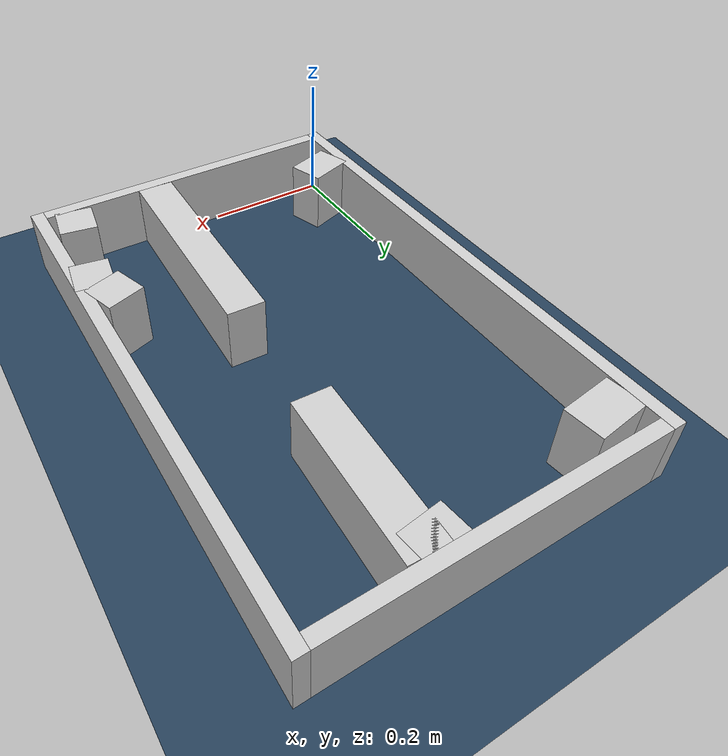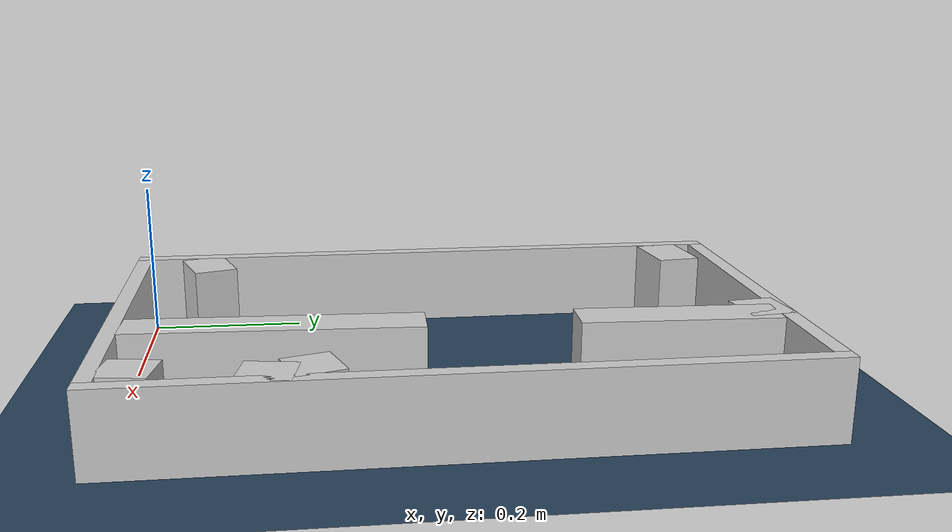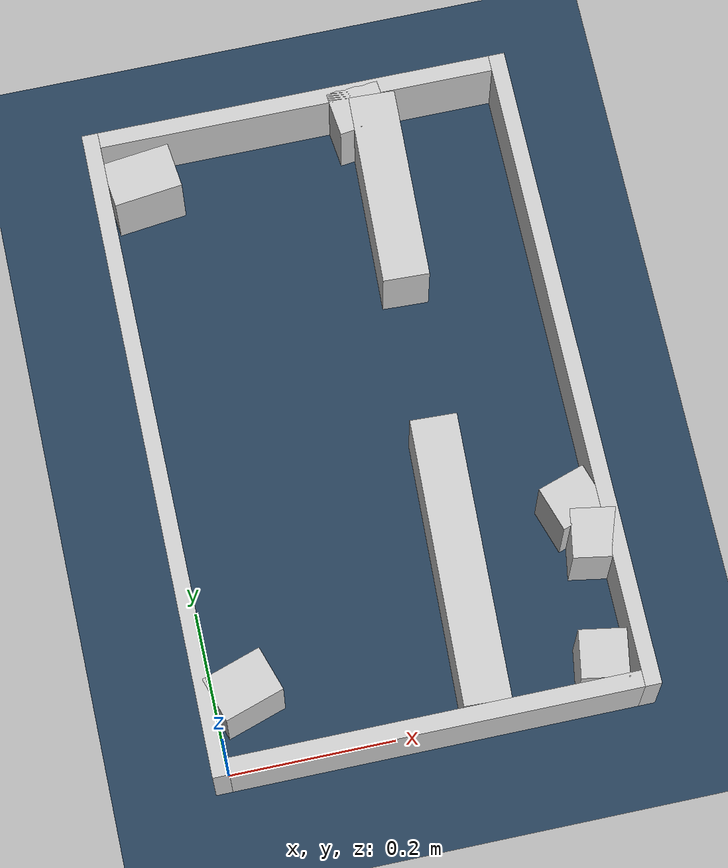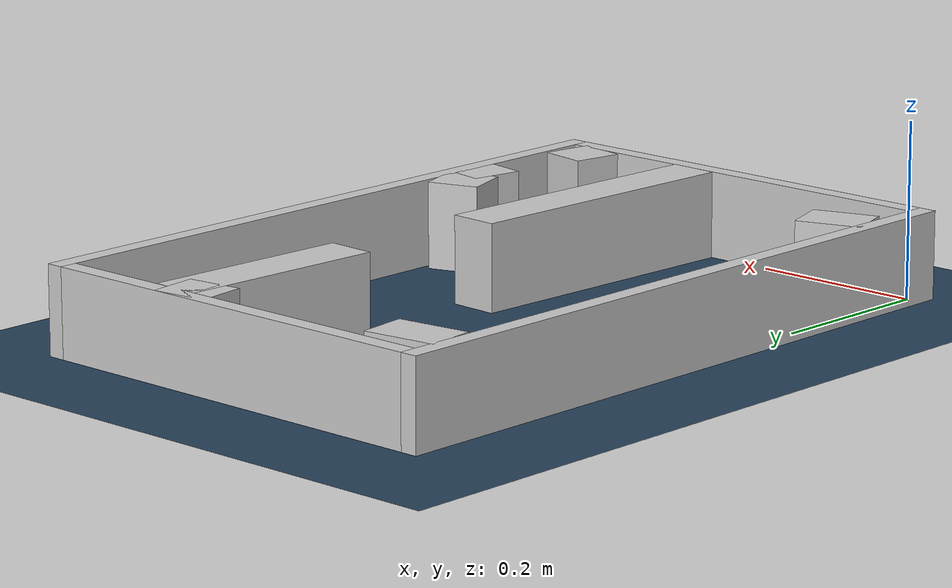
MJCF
<?xml version="1.0" ?>
<mujoco model="generated_real_template">
  <compiler angle="degree"/>
  <option timestep="0.002" integrator="implicitfast" iterations="100" cone="elliptic"/>
  <default>
    <geom density="1"/>
  </default>
  <asset>
    <texture builtin="gradient" height="3072" rgb1="0.3 0.5 0.7" rgb2="0 0 0" type="skybox" width="512"/>
    <texture builtin="checker" height="300" mark="edge" markrgb="0.8 0.8 0.8" name="groundplane" rgb1="0.2 0.3 0.4" rgb2="0.1 0.2 0.3" type="2d" width="300"/>
    <material name="groundplane" reflectance="0.2" texrepeat="5 5" texture="groundplane" texuniform="true"/>
  </asset>
  <worldbody>
    <light dir="0 0 -1" directional="true" pos="0 0 1.5"/>
    <geom name="floor" type="plane" condim="4" friction="0.5 0.005 0.001" material="groundplane" size="0 0 0.05"/>
    <body name="walls">
      <geom name="wall_boundary_left" type="box" condim="4" friction="1.0 0.005 0.0001" rgba="0.8 0.8 0.8 1" pos="-0.010000 0.387500 0.050000" euler="0 0 0.000000" size="0.010000 0.407500 0.050000"/>
      <geom name="wall_boundary_right" type="box" condim="4" friction="1.0 0.005 0.0001" rgba="0.8 0.8 0.8 1" pos="0.500000 0.387500 0.050000" euler="0 0 0.000000" size="0.010000 0.407500 0.050000"/>
      <geom name="wall_boundary_bottom" type="box" condim="4" friction="1.0 0.005 0.0001" rgba="0.8 0.8 0.8 1" pos="0.245000 -0.010000 0.050000" euler="0 0 0.000000" size="0.245000 0.010000 0.050000"/>
      <geom name="wall_boundary_top" type="box" condim="4" friction="1.0 0.005 0.0001" rgba="0.8 0.8 0.8 1" pos="0.245000 0.785000 0.050000" euler="0 0 0.000000" size="0.245000 0.010000 0.050000"/>
      <geom name="wall_inner_1_1" type="box" condim="4" friction="1.0 0.005 0.0001" rgba="0.8 0.8 0.8 1" pos="0.042120 0.729707 0.050000" euler="0 0 6.826597" size="0.042420 0.028500 0.050000"/>
      <geom name="wall_inner_1_2" type="box" condim="4" friction="1.0 0.005 0.0001" rgba="0.8 0.8 0.8 1" pos="0.319026 0.762857 0.050000" euler="0 0 6.826597" size="0.032342 0.028500 0.050000"/>
      <geom name="wall_inner_2_1" type="box" condim="4" friction="1.0 0.005 0.0001" rgba="0.8 0.8 0.8 1" pos="0.315108 0.176039 0.050000" euler="0 0 87.788431" size="0.176171 0.028500 0.050000"/>
      <geom name="wall_inner_2_2" type="box" condim="4" friction="1.0 0.005 0.0001" rgba="0.8 0.8 0.8 1" pos="0.333537 0.653255 0.050000" euler="0 0 87.788431" size="0.121836 0.028500 0.050000"/>
      <geom name="wall_inner_3_1" type="box" condim="4" friction="1.0 0.005 0.0001" rgba="0.8 0.8 0.8 1" pos="0.461343 0.219914 0.050000" euler="0 0 -161.910040" size="0.030147 0.028500 0.050000"/>
      <geom name="wall_inner_3_2" type="box" condim="4" friction="1.0 0.005 0.0001" rgba="0.8 0.8 0.8 1" pos="0.035991 0.080970 0.050000" euler="0 0 -161.910040" size="0.037863 0.028500 0.050000"/>
      <geom name="wall_inner_4_1" type="box" condim="4" friction="1.0 0.005 0.0001" rgba="0.8 0.8 0.8 1" pos="0.476877 0.172774 0.050000" euler="0 0 -99.513615" size="0.030337 0.028500 0.050000"/>
      <geom name="wall_inner_4_2" type="box" condim="4" friction="1.0 0.005 0.0001" rgba="0.8 0.8 0.8 1" pos="0.452761 0.028870 0.050000" euler="0 0 -99.513615" size="0.029273 0.028500 0.050000"/>
    </body>
  </worldbody>
</mujoco>
